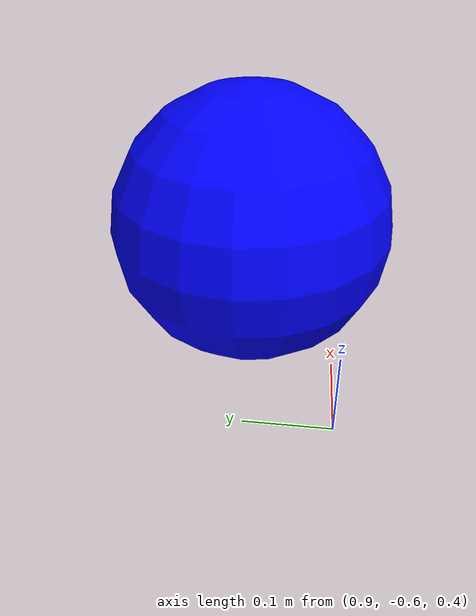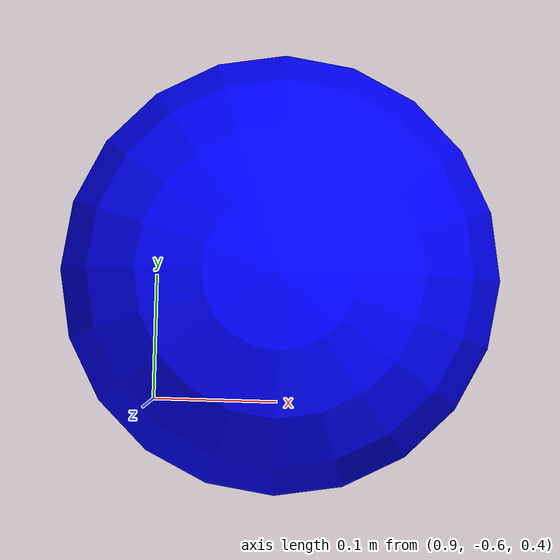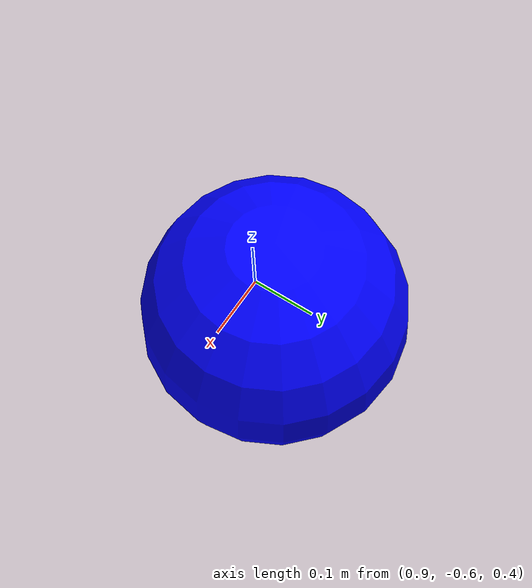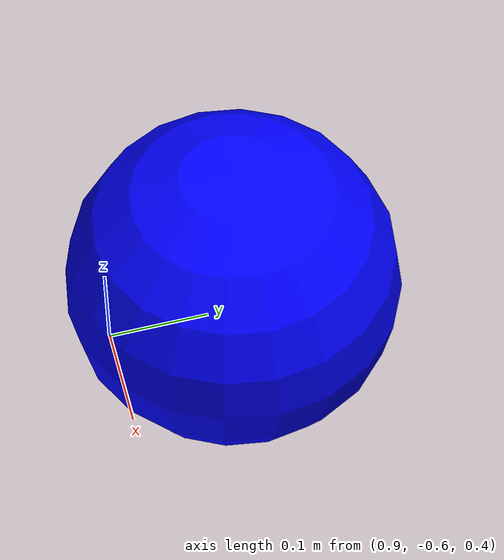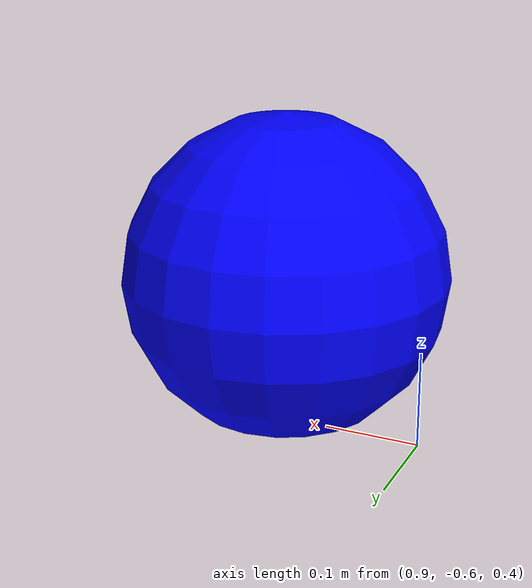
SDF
<?xml version="1.0" ?>
<sdf version="1.4">
  <!-- We use a custom world for the rrbot so that the camera angle is launched correctly -->

  <world name="spherical_object_world">
    <include>
      <uri>
        model://spherical_object
      </uri>
      <name>spherical_object</name>
      <pose>1.0 -0.5 0.6 0 0 0</pose>
    </include>

    <physics name="1ms" type="ignored">
            <max_step_size>0.001</max_step_size>
            <real_time_factor>1.0</real_time_factor>
      </physics>
      <plugin
            filename="libignition-gazebo-physics-system.so"
          name="ignition::gazebo::systems::Physics">
      </plugin>
      <plugin
            filename="libignition-gazebo-user-commands-system.so"
            name="ignition::gazebo::systems::UserCommands">
      </plugin>
      <plugin
            filename="libignition-gazebo-scene-broadcaster-system.so"
            name="ignition::gazebo::systems::SceneBroadcaster">
      </plugin>
      <gui fullscreen="0">
            <!-- 3D scene -->
        <plugin filename="GzScene3D" name="3D View">
            <ignition-gui>
              <title>3D View</title>
              <property type="bool" key="showTitleBar">false</property>
              <property type="string" key="state">docked</property>
            </ignition-gui>

            <engine>ogre2</engine>
            <scene>scene</scene>
            <ambient_light>1.0 1.0 1.0</ambient_light>
            <background_color>0.8 0.8 0.8</background_color>
            <camera_pose>-6 0 6 0 0.5 0</camera_pose>
        </plugin>

        <!-- World control -->
        <plugin filename="WorldControl" name="World control">
          <ignition-gui>
            <title>World control</title>
            <property type="bool" key="showTitleBar">false</property>
            <property type="bool" key="resizable">false</property>
            <property type="double" key="height">72</property>
            <property type="double" key="width">121</property>
            <property type="double" key="z">1</property>

            <property type="string" key="state">floating</property>
            <anchors target="3D View">
            <line own="left" target="left"/>
            <line own="bottom" target="bottom"/>
            </anchors>
          </ignition-gui>

          <play_pause>true</play_pause>
          <step>true</step>
          <start_paused>false</start_paused>
          <service>/world/world_demo/control</service>
          <stats_topic>/world/world_demo/stats</stats_topic>
        </plugin>
        <!-- World statistics -->
        <plugin filename="WorldStats" name="World stats">
            <ignition-gui>
              <title>World stats</title>
              <property type="bool" key="showTitleBar">false</property>
              <property type="bool" key="resizable">false</property>
              <property type="double" key="height">110</property>
              <property type="double" key="width">290</property>
              <property type="double" key="z">1</property>

              <property type="string" key="state">floating</property>
              <anchors target="3D View">
              <line own="right" target="right"/>
              <line own="bottom" target="bottom"/>
              </anchors>
            </ignition-gui>

            <sim_time>true</sim_time>
            <real_time>true</real_time>
            <real_time_factor>true</real_time_factor>
            <iterations>true</iterations>
            <topic>/world/world_demo/stats</topic>

        </plugin>
        <!-- Entity tree -->
        <plugin filename="EntityTree" name="Entity tree">
        </plugin>
      </gui>
      <light type="directional" name="sun">
          <cast_shadows>true</cast_shadows>
          <pose>0 0 10 0 0 0</pose>
          <diffuse>0.8 0.8 0.8 1</diffuse>
          <specular>0.2 0.2 0.2 1</specular>
          <attenuation>
        <range>1000</range>
        <constant>0.9</constant>
        <linear>0.01</linear>
        <quadratic>0.001</quadratic>
          </attenuation>
          <direction>-0.5 0.1 -0.9</direction>
      </light>

  </world>
</sdf>

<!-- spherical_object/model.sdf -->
<sdf version='1.9'>
  <model name='spherical_object'>
    <static>true</static>
    <pose>0 0 0 0 0 0</pose>
    <link name='base'>
      <visual name='base_visual'>
        <geometry>
          <sphere>
            <radius>0.15</radius>
          </sphere>
        </geometry>
        <material>
          <diffuse>0 0 1 1</diffuse>
          <specular>0.4 0.4 0.4 1</specular>
        </material>
      </visual>
    </link>
  </model>
</sdf>
